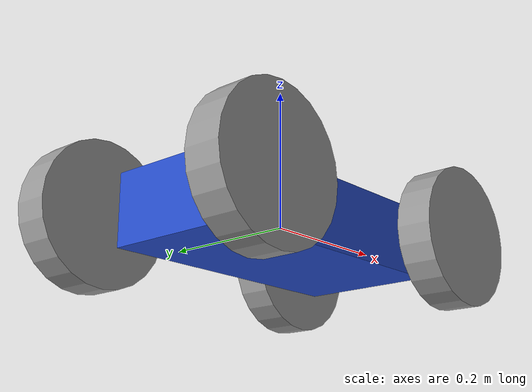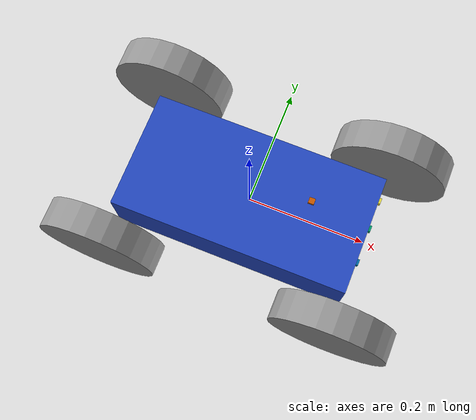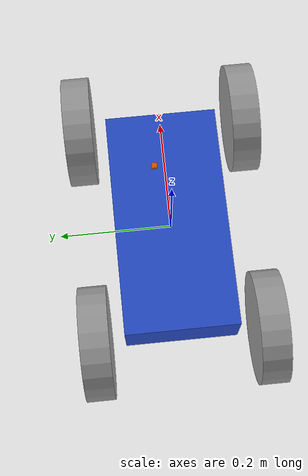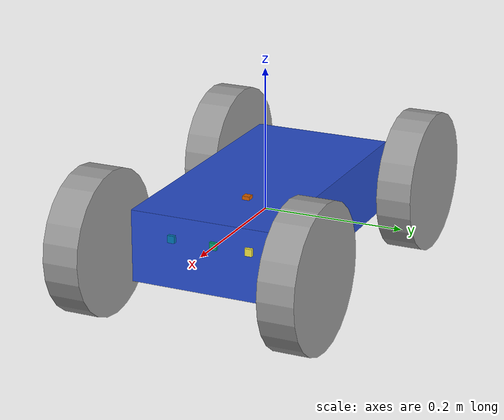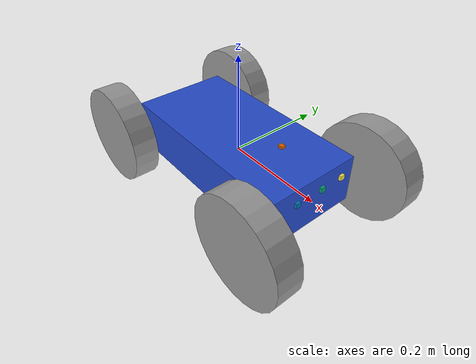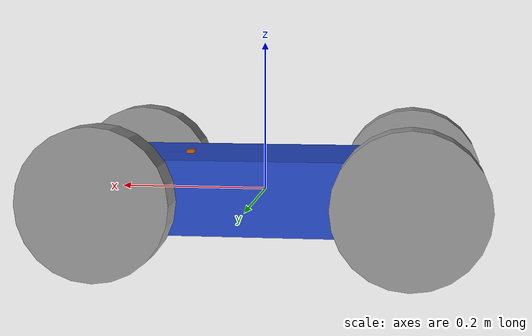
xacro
<?xml version='1.0'?>

<robot name="fbrobot" xmlns:xacro="http://www.ros.org/wiki/xacro">

  <xacro:include filename="$(find fb_description)/urdf/fb.gazebo" />
  <xacro:include filename="$(find fb_description)/urdf/materials.xacro" />
  <!--xacro:include filename="$(find mybot_description)/urdf/macros.xacro" /-->

  <link name='chassis'>
    <pose>0 0 0.1 0 0 0</pose>
    <inertial>
      <mass value="10.0"/>
      <origin xyz="0.0 0 0.1" rpy=" 0 0 0"/>
      <inertia
          ixx="0.5" ixy="0" ixz="0"
          iyy="1.0" iyz="0"
          izz="0.1"
      />
    </inertial>

    <collision name='collision'>
      <geometry>
        <box size=".4 .2 .1"/>
      </geometry>
    </collision>

    <visual name='chassis_visual'>
      <origin xyz="0 0 0" rpy=" 0 0 0"/>
      <geometry>
        <box size=".4 .2 .1"/>
      </geometry>
    </visual>

  </link>

  <link name="left_wheel">
    <!--origin xyz="0.1 0.13 0.1" rpy="0 1.5707 1.5707"/-->
    <collision name="collision">
      <origin xyz="0 0 0" rpy="0 1.5707 1.5707"/>
      <geometry>
        <cylinder radius="0.1" length="0.05"/>
      </geometry>
    </collision>
    <visual name="left_wheel_visual">
      <origin xyz="0 0 0" rpy="0 1.5707 1.5707"/>
      <geometry>
        <cylinder radius="0.1" length="0.05"/>
      </geometry>
    </visual>
    <inertial>
      <origin xyz="0 0 0" rpy="0 1.5707 1.5707"/>
      <mass value="5"/>
      <cylinder_inertia m="5" r="0.1" h="0.05"/>
      <inertia
        ixx="1.0" ixy="0.0" ixz="0.0"
        iyy="1.0" iyz="0.0"
        izz="1.0"/>
    </inertial>
  </link>
  <link name="base_ir_front">
    <collision>
      <origin xyz="0 0 0" rpy="0 0 0"/>
      <geometry>
        <box size="0.01 0.01 0.01"/>
      </geometry>
    </collision>
    <visual>
      <origin xyz="0 0 0" rpy="0 0 0"/>
      <geometry>
        <box size="0.01 0.01 0.01"/>
      </geometry>
    </visual>
    <inertial>
      <mass value="1e-5" />
      <origin xyz="0 0 0" rpy="0 0 0"/>
      <inertia ixx="1e-6" ixy="0" ixz="0" iyy="1e-6" iyz="0"      izz="1e-6" />
    </inertial>
</link>

<!-- neww -->
<link name="base_ir_front_2">
    <collision>
      <origin xyz="0 0 0" rpy="0 0 0"/>
      <geometry>
        <box size="0.01 0.01 0.01"/>
      </geometry>
    </collision>
    <visual>
      <origin xyz="0 0 0" rpy="0 0 0"/>
      <geometry>
        <box size="0.01 0.01 0.01"/>
      </geometry>
    </visual>
    <inertial>
      <mass value="1e-5" />
      <origin xyz="0 0 0" rpy="0 0 0"/>
      <inertia ixx="1e-6" ixy="0" ixz="0" iyy="1e-6" iyz="0"      izz="1e-6" />
    </inertial>
</link>

<!-- neww 2-->
<link name="base_ir_front_3">
    <collision>
      <origin xyz="0 0 0" rpy="0 0 0"/>
      <geometry>
        <box size="0.01 0.01 0.01"/>
      </geometry>
    </collision>
    <visual>
      <origin xyz="0 0 0" rpy="0 0 0"/>
      <geometry>
        <box size="0.01 0.01 0.01"/>
      </geometry>
    </visual>
    <inertial>
      <mass value="1e-5" />
      <origin xyz="0 0 0" rpy="0 0 0"/>
      <inertia ixx="1e-6" ixy="0" ixz="0" iyy="1e-6" iyz="0"      izz="1e-6" />
    </inertial>
</link>

  <link name="imu_link">
    <collision>
      <origin xyz="0 0 0" rpy="0 0 0"/>
      <geometry>
        <box size="0.01 0.01 0.01"/>
      </geometry>
    </collision>
    <visual>
      <origin xyz="0 0 0" rpy="0 0 0"/>
      <geometry>
        <box size="0.01 0.01 0.01"/>
      </geometry>
    </visual>
    <inertial>
      <mass value="1e-5" />
      <origin xyz="0 0 0" rpy="0 0 0"/>
      <inertia ixx="1e-6" ixy="0" ixz="0" iyy="1e-6" iyz="0"      izz="1e-6" />
    </inertial>
</link>

  <link name="right_wheel">
    <!--origin xyz="0.1 -0.13 0.1" rpy="0 1.5707 1.5707"/-->
    <collision name="collision">
      <origin xyz="0 0 0" rpy="0 1.5707 1.5707"/>
      <geometry>
        <cylinder radius="0.1" length="0.05"/>
      </geometry>
    </collision>
    <visual name="right_wheel_visual">
      <origin xyz="0 0 0" rpy="0 1.5707 1.5707"/>
      <geometry>
        <cylinder radius="0.1" length="0.05"/>
      </geometry>
    </visual>
    <inertial>
      <origin xyz="0 0 0" rpy="0 1.5707 1.5707"/>
      <mass value="5"/>
      <cylinder_inertia m="5" r="0.1" h="0.05"/>
      <inertia
        ixx="1.0" ixy="0.0" ixz="0.0"
        iyy="1.0" iyz="0.0"
        izz="1.0"/>
    </inertial>
  </link>
 <link name="left_wheel_front">
    <!--origin xyz="0.1 -0.13 0.1" rpy="0 1.5707 1.5707"/-->
    <collision name="collision">
      <origin xyz="0 0 0" rpy="0 1.5707 1.5707"/>
      <geometry>
        <cylinder radius="0.1" length="0.05"/>
      </geometry>
    </collision>
    <visual name="left_wheel_front_visual">
      <origin xyz="0.0 0.0 0" rpy="0 1.5707 1.5707"/>
      <geometry>
        <cylinder radius="0.1" length="0.05"/>
      </geometry>
    </visual>
    <inertial>
      <origin xyz="0.0 0.0 0" rpy="0 1.5707 1.5707"/>
      <mass value="5"/>
      <cylinder_inertia m="5" r="0.1" h="0.05"/>
      <inertia
        ixx="1.0" ixy="0.0" ixz="0.0"
        iyy="1.0" iyz="0.0"
        izz="1.0"/>
    </inertial>
  </link>

<link name="right_wheel_front">
    <!--origin xyz="0.1 -0.13 0.1" rpy="0 1.5707 1.5707"/-->
    <collision name="collision">
      <origin xyz="0 0 0" rpy="0 1.5707 1.5707"/>
      <geometry>
        <cylinder radius="0.1" length="0.05"/>
      </geometry>
    </collision>
    <visual name="right_wheel_front_visual">
      <origin xyz="0.0 0.0 0" rpy="0 1.5707 1.5707"/>
      <geometry>
        <cylinder radius="0.1" length="0.05"/>
      </geometry>
    </visual>
    <inertial>
      <origin xyz="0.0 0.0 0" rpy="0 1.5707 1.5707"/>
      <mass value="5"/>
      <cylinder_inertia m="5" r="0.1" h="0.05"/>
      <inertia
        ixx="1.0" ixy="0.0" ixz="0.0"
        iyy="1.0" iyz="0.0"
        izz="1.0"/>
    </inertial>
  </link>
 <joint name="ir_front_joint" type="fixed">
    <axis xyz="0 1 0" />
    <origin rpy="0 0 0" xyz="0.2 0.02 0.020" />
    <parent link="chassis"/>
    <child link="base_ir_front"/>
</joint>

<!-- newww -->
 <joint name="ir_front_joint_2" type="fixed">
    <axis xyz="0 1 0" />
    <origin rpy="0 0 0" xyz="0.2 0.07 0.020" />
    <parent link="chassis"/>
    <child link="base_ir_front_2"/>
</joint>

<!-- newww 2-->
 <joint name="ir_front_joint_3" type="fixed">
    <axis xyz="0 1 0" />
    <origin rpy="0 0 0" xyz="0.2 -0.04 0.020" />
    <parent link="chassis"/>
    <child link="base_ir_front_3"/>
</joint>

<joint name="imu_joint" type="fixed">
    <axis xyz="0 1 0" />
    <origin rpy="0 1.57 0" xyz="0.1 0.02 0.05" />
    <parent link="chassis"/>
    <child link="imu_link"/>
</joint>

 <joint type="continuous" name="left_wheel_hinge">
    <origin xyz="0.2 0.15 0" rpy="0 0 0"/>
    <child link="left_wheel"/>
    <parent link="chassis"/>
    <axis xyz="0 1 0" rpy="0 0 0"/>
    <limit effort="100" velocity="100"/>
    <joint_properties damping="0.0" friction="0.0"/>
  </joint>

  <joint type="continuous" name="right_wheel_hinge">
    <origin xyz="0.2 -0.15 0" rpy="0 0 0"/>
    <child link="right_wheel"/>
    <parent link="chassis"/>
    <axis xyz="0 1 0" rpy="0 0 0"/>
    <limit effort="100" velocity="100"/>
    <joint_properties damping="0.0" friction="0.0"/>
  </joint>

  <joint type="continuous" name="right_wheel_front_hinge">
    <origin xyz="-0.2 -0.15 0" rpy="0 0 0"/>
    <child link="right_wheel_front"/>
    <parent link="chassis"/>
    <axis xyz="0 1 0" rpy="0 0 0"/>
    <limit effort="100" velocity="100"/>
    <joint_properties damping="0.0" friction="0.0"/>
  </joint>

 <joint type="continuous" name="left_wheel_front_hinge">
    <origin xyz="-0.2 0.15 0" rpy="0 0 0"/>
    <child link="left_wheel_front"/>
    <parent link="chassis"/>
    <axis xyz="0 1 0" rpy="0 0 0"/>
    <limit effort="100" velocity="100"/>
    <joint_properties damping="0.0" friction="0.0"/>
  </joint>

</robot>
